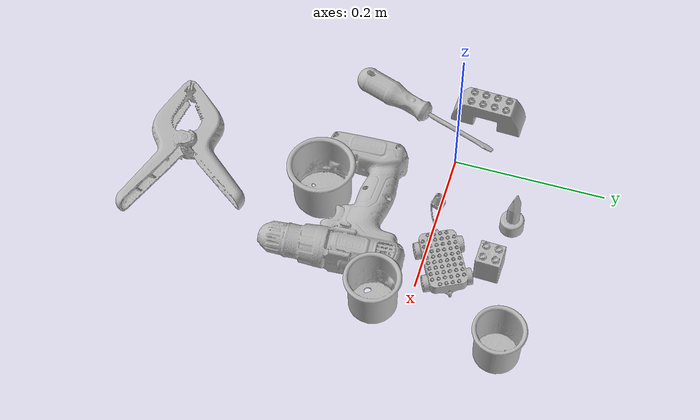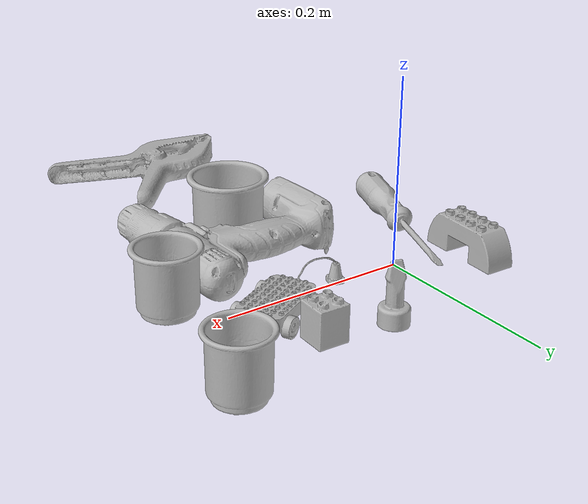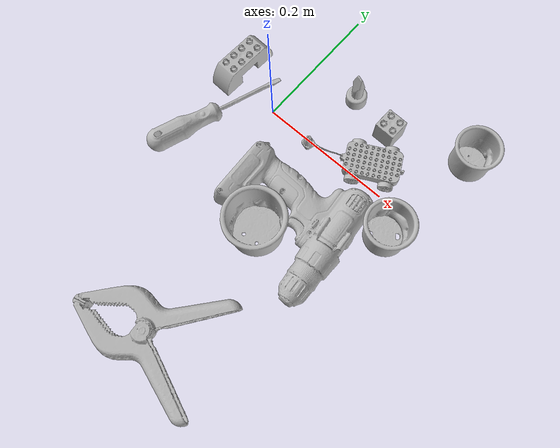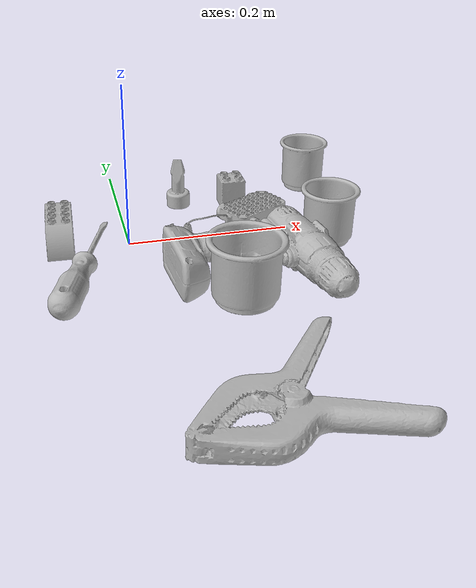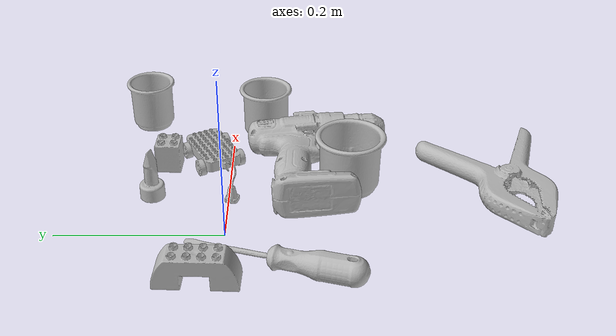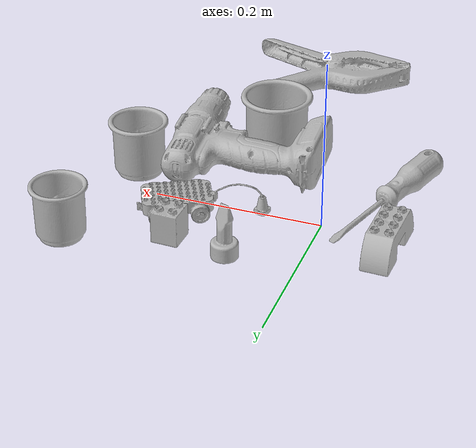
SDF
<sdf version="1.4">
  <world name="default">
    <light name="light1" type="point">
      <pose>0 0 1 0 0 0</pose>
      <diffuse>3 3 3 1</diffuse>
      <specular>3 3 3 1</specular>
    </light>
    <light name="light2" type="point">
      <pose>0 0.5 2 0 0 0</pose>
      <diffuse>1 1 1 1</diffuse>
      <specular>1 1 1 1</specular>
    </light>
    <light name="light3" type="point">
      <pose>0 0.5 2 0 0 0</pose>
      <diffuse>3 3 3 1</diffuse>
      <specular>3 3 3 1</specular>
    </light>
    <scene>
      <ambient>0.7 0.7 0.7</ambient>
    </scene>
    <model name="cup1">
      <link name="link_cup1">
        <collision name="default">
          <geometry>
            <mesh>
              <uri>model://d_cups/collision_meshes/collision.obj</uri>
              <scale>1.0 1.0 1.0</scale>
            </mesh>
          </geometry>
          <surface>
            <friction>
              <ode>
                <mu>0.5</mu>
                <mu2>0.5</mu2>
              </ode>
            </friction>
          <contact>
        <ode>
            <max_vel>0</max_vel>
            <min_depth>0.0001</min_depth>
            <kp>1e8</kp>
        </ode>
    </contact></surface>
        </collision>
        <visual name="default">
          <geometry>
            <mesh>
              <uri>model://d_cups/visual_meshes/visual.dae</uri>
              <scale>1.0 1.0 1.0</scale>
            </mesh>
          </geometry>
        </visual>
        <inertial>
          <mass>0.04943045228719711</mass>
          <pose>0.0008068052702583373 0.0019117395859211683 -0.0022666507866233587 0.2401104468273406 -0.24710716259907536 0.594298245500967</pose>
          <inertia>
            <ixx>4.1384912e-05</ixx>
            <iyy>4.1265153e-05</iyy>
            <izz>3.7460377e-05</izz>
            <ixy>0</ixy>
            <ixz>0</ixz>
            <iyz>0</iyz>
          </inertia>
        </inertial>
      </link>
      <pose>0.24009975790977478 -0.04230920225381851 0.034661296755075455 -0.0006744434734168635 -0.00026157601201527513 0.056499022685088225</pose>
    </model>
    <model name="cup2">
      <link name="link_cup2">
        <collision name="default">
          <geometry>
            <mesh>
              <uri>model://c_cups/collision_meshes/collision.obj</uri>
              <scale>1.0 1.0 1.0</scale>
            </mesh>
          </geometry>
          <surface>
            <friction>
              <ode>
                <mu>0.5</mu>
                <mu2>0.5</mu2>
              </ode>
            </friction>
          <contact>
        <ode>
            <max_vel>0</max_vel>
            <min_depth>0.0001</min_depth>
            <kp>1e8</kp>
        </ode>
    </contact></surface>
        </collision>
        <visual name="default">
          <geometry>
            <mesh>
              <uri>model://c_cups/visual_meshes/visual.dae</uri>
              <scale>1.0 1.0 1.0</scale>
            </mesh>
          </geometry>
        </visual>
        <inertial>
          <mass>0.02161477506160736</mass>
          <pose>0.0007237254758365452 0.002015391131862998 -0.0012750980677083135 0.3021577101392444 0.013461522825774588 -0.08771822086046323</pose>
          <inertia>
            <ixx>1.607462e-05</ixx>
            <iyy>1.5790554e-05</iyy>
            <izz>1.4215883e-05</izz>
            <ixy>0</ixy>
            <ixz>0</ixz>
            <iyz>0</iyz>
          </inertia>
        </inertial>
      </link>
      <pose>0.2641175091266632 0.11817672848701477 0.033459167927503586 1.236045339060182e-05 -1.4060994609831255e-07 -1.3536125205822969</pose>
    </model>
    <model name="cup3">
      <link name="link_cup3">
        <collision name="default">
          <geometry>
            <mesh>
              <uri>model://g_cups/collision_meshes/collision.obj</uri>
              <scale>1.0 1.0 1.0</scale>
            </mesh>
          </geometry>
          <surface>
            <friction>
              <ode>
                <mu>0.5</mu>
                <mu2>0.5</mu2>
              </ode>
            </friction>
          <contact>
        <ode>
            <max_vel>0</max_vel>
            <min_depth>0.0001</min_depth>
            <kp>1e8</kp>
        </ode>
    </contact></surface>
        </collision>
        <visual name="default">
          <geometry>
            <mesh>
              <uri>model://g_cups/visual_meshes/visual.dae</uri>
              <scale>1.0 1.0 1.0</scale>
            </mesh>
          </geometry>
        </visual>
        <inertial>
          <mass>0.04413851350545883</mass>
          <pose>-0.0007946275873109698 -4.206433004583232e-05 -0.002132937777787447 -0.2138199678327952 -0.31410615416341514 0.3111935262320568</pose>
          <inertia>
            <ixx>5.151955e-05</ixx>
            <iyy>5.1344283e-05</iyy>
            <izz>5.3365377e-05</izz>
            <ixy>0</ixy>
            <ixz>0</ixz>
            <iyz>0</iyz>
          </inertia>
        </inertial>
      </link>
      <pose>0.10445457696914673 -0.1502152383327484 0.03720305114984512 -2.071480116559085e-07 -2.6694302833160713e-06 -0.0346179140519123</pose>
    </model>
    <model name="toy1">
      <link name="link_toy1">
        <collision name="default">
          <geometry>
            <mesh>
              <uri>model://e_lego_duplo/collision_meshes/collision.obj</uri>
              <scale>1.0 1.0 1.0</scale>
            </mesh>
          </geometry>
          <surface>
            <friction>
              <ode>
                <mu>0.5</mu>
                <mu2>0.5</mu2>
              </ode>
            </friction>
          <contact>
        <ode>
            <max_vel>0</max_vel>
            <min_depth>0.0001</min_depth>
            <kp>1e8</kp>
        </ode>
    </contact></surface>
        </collision>
        <visual name="default">
          <geometry>
            <mesh>
              <uri>model://e_lego_duplo/visual_meshes/visual.dae</uri>
              <scale>1.0 1.0 1.0</scale>
            </mesh>
          </geometry>
        </visual>
        <inertial>
          <mass>0.08806774020195007</mass>
          <pose>0.0003256051568314433 0.00023485405836254358 0.0019521453650668263 -0.02256777049150226 -6.824370740412915e-05 -0.00762515400873393</pose>
          <inertia>
            <ixx>1.8365032e-05</ixx>
            <iyy>7.537481e-05</iyy>
            <izz>7.3399904e-05</izz>
            <ixy>0</ixy>
            <ixz>0</ixz>
            <iyz>0</iyz>
          </inertia>
        </inertial>
      </link>
      <pose>-0.08158515393733978 0.024299411103129387 0.021809004247188568 5.339290376157702e-07 -1.0545046839860358e-07 -1.608282551767394</pose>
    </model>
    <model name="toy2">
      <link name="link_toy2">
        <collision name="default">
          <geometry>
            <mesh>
              <uri>model://b_lego_duplo/collision_meshes/collision.obj</uri>
              <scale>1.0 1.0 1.0</scale>
            </mesh>
          </geometry>
          <surface>
            <friction>
              <ode>
                <mu>0.5</mu>
                <mu2>0.5</mu2>
              </ode>
            </friction>
          <contact>
        <ode>
            <max_vel>0</max_vel>
            <min_depth>0.0001</min_depth>
            <kp>1e8</kp>
        </ode>
    </contact></surface>
        </collision>
        <visual name="default">
          <geometry>
            <mesh>
              <uri>model://b_lego_duplo/visual_meshes/visual.dae</uri>
              <scale>1.0 1.0 1.0</scale>
            </mesh>
          </geometry>
        </visual>
        <inertial>
          <mass>0.04734363779425621</mass>
          <pose>-0.00011053025809815153 -9.15254986466607e-06 0.0019294298253953457 -0.03749543151759021 -0.02635344242756168 0.4519151706388912</pose>
          <inertia>
            <ixx>9.689229e-06</ixx>
            <iyy>9.754364e-06</iyy>
            <izz>8.632791e-06</izz>
            <ixy>0</ixy>
            <ixz>0</ixz>
            <iyz>0</iyz>
          </inertia>
        </inertial>
      </link>
      <pose>0.15013451874256134 0.08149617165327072 0.02181500941514969 1.006856391291521e-06 7.189513337172984e-10 -0.029178410972966966</pose>
    </model>
    <model name="toy3">
      <link name="link_toy3">
        <collision name="default">
          <geometry>
            <mesh>
              <uri>model://g_lego_duplo/collision_meshes/collision.obj</uri>
              <scale>0.5 0.5 0.5</scale>
            </mesh>
          </geometry>
          <surface>
            <friction>
              <ode>
                <mu>0.5</mu>
                <mu2>0.5</mu2>
              </ode>
            </friction>
          <contact>
        <ode>
            <max_vel>0</max_vel>
            <min_depth>0.0001</min_depth>
            <kp>1e8</kp>
        </ode>
    </contact></surface>
        </collision>
        <visual name="default">
          <geometry>
            <mesh>
              <uri>model://g_lego_duplo/visual_meshes/visual.dae</uri>
              <scale>0.5 0.5 0.5</scale>
            </mesh>
          </geometry>
        </visual>
        <inertial>
          <mass>0.0549229197204113</mass>
          <pose>-0.02502383477985859 0.0008777315961197019 0.0019403378246352077 0.010963030367844774 0.03810824354215502 -0.09653013034360637</pose>
          <inertia>
            <ixx>1.989599e-05</ixx>
            <iyy>6.0152015e-05</iyy>
            <izz>7.525238e-05</izz>
            <ixy>0</ixy>
            <ixz>0</ixz>
            <iyz>0</iyz>
          </inertia>
        </inertial>
      </link>
      <pose>0.13637489080429077 0.013793841004371643 0.01496506854891777 0.0022187298835957218 -0.004210629195601921 -2.667545453585299</pose>
    </model>
    <model name="toy4">
      <link name="link_toy4">
        <collision name="default">
          <geometry>
            <mesh>
              <uri>model://e_toy_airplane/collision_meshes/collision.obj</uri>
              <scale>1.0 1.0 1.0</scale>
            </mesh>
          </geometry>
          <surface>
            <friction>
              <ode>
                <mu>0.5</mu>
                <mu2>0.5</mu2>
              </ode>
            </friction>
          <contact>
        <ode>
            <max_vel>0</max_vel>
            <min_depth>0.0001</min_depth>
            <kp>1e8</kp>
        </ode>
    </contact></surface>
        </collision>
        <visual name="default">
          <geometry>
            <mesh>
              <uri>model://e_toy_airplane/visual_meshes/visual.dae</uri>
              <scale>1.0 1.0 1.0</scale>
            </mesh>
          </geometry>
        </visual>
        <inertial>
          <mass>0.02949252724647522</mass>
          <pose>0.0001174047210952267 -2.248294731543865e-05 -0.011187205091118813 0.00551852159670192 0.009228270522190251 0.15041692690710914</pose>
          <inertia>
            <ixx>9.0014555e-06</ixx>
            <iyy>8.909378e-06</iyy>
            <izz>2.7052915e-06</izz>
            <ixy>0</ixy>
            <ixz>0</ixz>
            <iyz>0</iyz>
          </inertia>
        </inertial>
      </link>
      <pose>0.08030840754508972 0.09468474984169006 0.03321103751659393 5.074268891710833e-06 -0.00022990125069169125 -2.0328655050192896</pose>
    </model>
    <model name="hardware1">
      <link name="link_hardware1">
        <collision name="default">
          <geometry>
            <mesh>
              <uri>model://power_drill/collision_meshes/collision.obj</uri>
              <scale>1.0 1.0 1.0</scale>
            </mesh>
          </geometry>
          <surface>
            <friction>
              <ode>
                <mu>0.5</mu>
                <mu2>0.5</mu2>
              </ode>
            </friction>
          <contact>
        <ode>
            <max_vel>0</max_vel>
            <min_depth>0.0001</min_depth>
            <kp>1e8</kp>
        </ode>
    </contact></surface>
        </collision>
        <visual name="default">
          <geometry>
            <mesh>
              <uri>model://power_drill/visual_meshes/visual.dae</uri>
              <scale>1.0 1.0 1.0</scale>
            </mesh>
          </geometry>
        </visual>
        <inertial>
          <mass>0.4622694253921509</mass>
          <pose>-0.014780544675886631 0.014369423501193523 0.0012414170196279883 0.0046091653592492164 0.00407302392026691 -0.1836269379856391</pose>
          <inertia>
            <ixx>0.0018837696</ixx>
            <iyy>0.00074116525</iyy>
            <izz>0.0024878501</izz>
            <ixy>0</ixy>
            <ixz>0</ixz>
            <iyz>0</iyz>
          </inertia>
        </inertial>
      </link>
      <pose>0.12520019710063934 -0.11670820415019989 0.02731243707239628 -0.03030557203304191 -0.04725312479347404 -1.490888624608435</pose>
    </model>
    <model name="hardware2">
      <link name="link_hardware2">
        <collision name="default">
          <geometry>
            <mesh>
              <uri>model://flat_screwdriver/collision_meshes/collision.obj</uri>
              <scale>1.0 1.0 1.0</scale>
            </mesh>
          </geometry>
          <surface>
            <friction>
              <ode>
                <mu>0.5</mu>
                <mu2>0.5</mu2>
              </ode>
            </friction>
          <contact>
        <ode>
            <max_vel>0</max_vel>
            <min_depth>0.0001</min_depth>
            <kp>1e8</kp>
        </ode>
    </contact></surface>
        </collision>
        <visual name="default">
          <geometry>
            <mesh>
              <uri>model://flat_screwdriver/visual_meshes/visual.dae</uri>
              <scale>1.0 1.0 1.0</scale>
            </mesh>
          </geometry>
        </visual>
        <inertial>
          <mass>0.07028686255216599</mass>
          <pose>-0.0489187091588974 -0.0006576801533810794 -0.0006140916375443339 -0.5613212056153659 -0.0032337294395619258 0.006982277044942129</pose>
          <inertia>
            <ixx>8.3043415e-06</ixx>
            <iyy>0.00010542549</iyy>
            <izz>0.00010537667</izz>
            <ixy>0</ixy>
            <ixz>0</ixz>
            <iyz>0</iyz>
          </inertia>
        </inertial>
      </link>
      <pose>-0.05931407958269119 -0.059893302619457245 0.015338637866079807 -0.21441075506604032 0.040695065065255644 1.2393297831817394</pose>
    </model>
    <model name="hardware3">
      <link name="link_hardware3">
        <collision name="default">
          <geometry>
            <mesh>
              <uri>model://extra_large_clamp/collision_meshes/collision.obj</uri>
              <scale>1.0 1.0 1.0</scale>
            </mesh>
          </geometry>
          <surface>
            <friction>
              <ode>
                <mu>0.5</mu>
                <mu2>0.5</mu2>
              </ode>
            </friction>
          <contact>
        <ode>
            <max_vel>0</max_vel>
            <min_depth>0.0001</min_depth>
            <kp>1e8</kp>
        </ode>
    </contact></surface>
        </collision>
        <visual name="default">
          <geometry>
            <mesh>
              <uri>model://extra_large_clamp/visual_meshes/visual.dae</uri>
              <scale>1.0 1.0 1.0</scale>
            </mesh>
          </geometry>
        </visual>
        <inertial>
          <mass>0.19051048159599304</mass>
          <pose>0.0032320222817361355 -7.615413051098585e-05 0.0003172157157678157 0.013786989477745152 -0.0005066809054022428 -0.0008935736893705532</pose>
          <inertia>
            <ixx>0.00028954487</ixx>
            <iyy>0.0004985067</iyy>
            <izz>0.0007616155</izz>
            <ixy>0</ixy>
            <ixz>0</ixz>
            <iyz>0</iyz>
          </inertia>
        </inertial>
      </link>
      <pose>0.08880647271871567 -0.3454127013683319 0.018048549070954323 -0.02962809253223845 0.010211629891712684 -2.8592255910023865</pose>
    </model>
  <physics type="ode">
      <max_contacts>50</max_contacts>
      <ode>
        <solver>
          <type>quick</type>
          <iters>75</iters>
        </solver>
        <constraints>
          <contact_max_correcting_vel>0</contact_max_correcting_vel>
          <contact_surface_layer>0</contact_surface_layer>
        </constraints>
      </ode>
    </physics></world>
</sdf>
